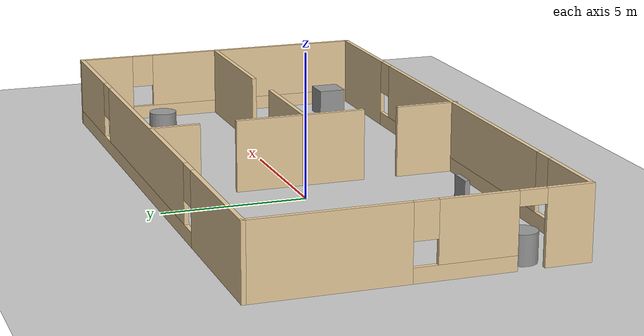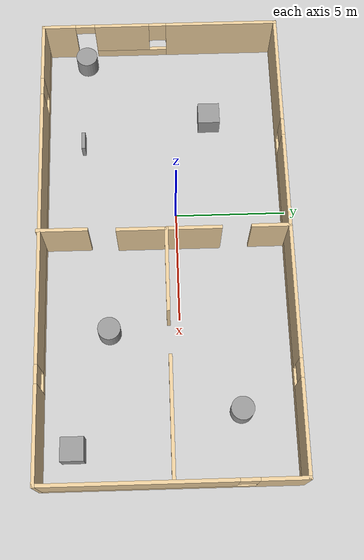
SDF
<sdf version="1.7">
 <world name="default">
  <light name="sun" type="directional">
   <pose>0 0 10 0 -0 0</pose>
   <diffuse>0.8 0.8 0.8 1</diffuse>
   <specular>0.2 0.2 0.2 1</specular>
   <attenuation>
    <range>1000</range>
    <constant>0.9</constant>
    <linear>0.01</linear>
    <quadratic>0.001</quadratic>
   </attenuation>
   <direction>-0.5 0.1 -0.9</direction>
   <spot><inner_angle>0</inner_angle><outer_angle>0</outer_angle><falloff>0</falloff></spot>
  </light>
  <model name="ground_plane">
   <static>1</static>
   <link name="link">
    <collision name="collision">
     <geometry><plane><normal>0 0 1</normal><size>100 100</size></plane></geometry>
     <surface><friction><ode><mu>100</mu><mu2>50</mu2></ode></friction></surface>
    </collision>
    <visual name="visual">
     <cast_shadows>0</cast_shadows>
     <geometry><plane><normal>0 0 1</normal><size>100 100</size></plane></geometry>
     <material>
      <script><uri>file://media/materials/scripts/gazebo.material</uri><name>Gazebo/Grey</name></script>
     </material>
    </visual>
   </link>
  </model>
  <gravity>0 0 -9.8</gravity>
  <magnetic_field>6e-06 2.3e-05 -4.2e-05</magnetic_field>
  <atmosphere type="adiabatic"/>
  <physics type="ode">
   <max_step_size>0.001</max_step_size>
   <real_time_factor>1</real_time_factor>
   <real_time_update_rate>1000</real_time_update_rate>
  </physics>
  <scene><ambient>0.4 0.4 0.4 1</ambient><background>0.7 0.7 0.7 1</background><shadows>1</shadows></scene>
  <audio><device>default</device></audio>
  <spherical_coordinates>
   <surface_model>EARTH_WGS84</surface_model>
   <latitude_deg>0</latitude_deg>
   <longitude_deg>0</longitude_deg>
   <elevation>0</elevation>
   <heading_deg>0</heading_deg>
  </spherical_coordinates>
  <model name="base-building">
   <pose>1.71804 -0.568303 0 0 -0 0</pose>
   <link name="Wall_0">
    <pose>-10.425 0.034868 0 0 -0 -1.5708</pose>
    <visual name="Wall_0_Visual_0">
     <pose>-2.90241 0 1.25 0 -0 0</pose>
     <geometry><box><size>5.19517 0.15 2.5</size></box></geometry>
     <material>
      <script><uri>file://media/materials/scripts/gazebo.material</uri><name>Gazebo/Grey</name></script>
      <ambient>0.921569 0.807843 0.615686 1</ambient>
     </material>
     <meta><layer>0</layer></meta>
    </visual>
    <collision name="Wall_0_Collision_0">
     <geometry><box><size>5.19517 0.15 2.5</size></box></geometry>
     <pose>-2.90241 0 1.25 0 -0 0</pose>
    </collision>
    <visual name="Wall_0_Visual_1">
     <pose>4.71817 0 1.25 0 -0 0</pose>
     <geometry><box><size>1.56366 0.15 2.5</size></box></geometry>
     <material>
      <script><uri>file://media/materials/scripts/gazebo.material</uri><name>Gazebo/Grey</name></script>
      <ambient>0.921569 0.807843 0.615686 1</ambient>
     </material>
     <meta><layer>0</layer></meta>
    </visual>
    <collision name="Wall_0_Collision_1">
     <geometry><box><size>1.56366 0.15 2.5</size></box></geometry>
     <pose>4.71817 0 1.25 0 -0 0</pose>
    </collision>
    <visual name="Wall_0_Visual_2">
     <pose>1.36576 0 0.25 0 -0 0</pose>
     <geometry><box><size>3.34117 0.15 0.5</size></box></geometry>
     <material>
      <script><uri>file://media/materials/scripts/gazebo.material</uri><name>Gazebo/Grey</name></script>
      <ambient>0.921569 0.807843 0.615686 1</ambient>
     </material>
     <meta><layer>0</layer></meta>
    </visual>
    <collision name="Wall_0_Collision_2">
     <geometry><box><size>3.34117 0.15 0.5</size></box></geometry>
     <pose>1.36576 0 0.25 0 -0 0</pose>
    </collision>
    <visual name="Wall_0_Visual_3">
     <pose>1.76576 0 1.5 0 -0 0</pose>
     <geometry><box><size>2.54117 0.15 2</size></box></geometry>
     <material>
      <script><uri>file://media/materials/scripts/gazebo.material</uri><name>Gazebo/Grey</name></script>
      <ambient>0.921569 0.807843 0.615686 1</ambient>
     </material>
     <meta><layer>0</layer></meta>
    </visual>
    <collision name="Wall_0_Collision_3">
     <geometry><box><size>2.54117 0.15 2</size></box></geometry>
     <pose>1.76576 0 1.5 0 -0 0</pose>
    </collision>
    <visual name="Wall_0_Visual_4">
     <pose>0.095172 0 1.9 0 -0 0</pose>
     <geometry><box><size>0.8 0.15 1.2</size></box></geometry>
     <material>
      <script><uri>file://media/materials/scripts/gazebo.material</uri><name>Gazebo/Grey</name></script>
      <ambient>0.921569 0.807843 0.615686 1</ambient>
     </material>
     <meta><layer>0</layer></meta>
    </visual>
    <collision name="Wall_0_Collision_4">
     <geometry><box><size>0.8 0.15 1.2</size></box></geometry>
     <pose>0.095172 0 1.9 0 -0 0</pose>
    </collision>
    <visual name="Wall_0_Visual_5">
     <pose>3.48634 0 2.25 0 -0 0</pose>
     <geometry><box><size>0.9 0.15 0.5</size></box></geometry>
     <material>
      <script><uri>file://media/materials/scripts/gazebo.material</uri><name>Gazebo/Grey</name></script>
      <ambient>0.921569 0.807843 0.615686 1</ambient>
     </material>
     <meta><layer>0</layer></meta>
    </visual>
    <collision name="Wall_0_Collision_5">
     <geometry><box><size>0.9 0.15 0.5</size></box></geometry>
     <pose>3.48634 0 2.25 0 -0 0</pose>
    </collision>
   </link>
   <link name="Wall_14">
    <collision name="Wall_14_Collision">
     <geometry><box><size>2.5 0.15 2.5</size></box></geometry>
     <pose>0 0 1.25 0 -0 0</pose>
    </collision>
    <visual name="Wall_14_Visual">
     <pose>0 0 1.25 0 -0 0</pose>
     <geometry><box><size>2.5 0.15 2.5</size></box></geometry>
     <material>
      <script><uri>file://media/materials/scripts/gazebo.material</uri><name>Gazebo/Grey</name></script>
      <ambient>0.921569 0.807843 0.615686 1</ambient>
     </material>
     <meta><layer>0</layer></meta>
    </visual>
    <pose>-0.162029 1.26797 0 0 -0 1.5708</pose>
   </link>
   <link name="Wall_2">
    <pose>-0 5.45987 0 0 -0 0</pose>
    <visual name="Wall_2_Visual_0">
     <pose>-7.90354 0 1.25 0 -0 0</pose>
     <geometry><box><size>5.19291 0.15 2.5</size></box></geometry>
     <material>
      <script><uri>file://media/materials/scripts/gazebo.material</uri><name>Gazebo/Grey</name></script>
      <ambient>0.921569 0.807843 0.615686 1</ambient>
     </material>
     <meta><layer>0</layer></meta>
    </visual>
    <collision name="Wall_2_Collision_0">
     <geometry><box><size>5.19291 0.15 2.5</size></box></geometry>
     <pose>-7.90354 0 1.25 0 -0 0</pose>
    </collision>
    <visual name="Wall_2_Visual_1">
     <pose>2.59646 0 0.25 0 -0 0</pose>
     <geometry><box><size>15.8071 0.15 0.5</size></box></geometry>
     <material>
      <script><uri>file://media/materials/scripts/gazebo.material</uri><name>Gazebo/Grey</name></script>
      <ambient>0.921569 0.807843 0.615686 1</ambient>
     </material>
     <meta><layer>0</layer></meta>
    </visual>
    <collision name="Wall_2_Collision_1">
     <geometry><box><size>15.8071 0.15 0.5</size></box></geometry>
     <pose>2.59646 0 0.25 0 -0 0</pose>
    </collision>
    <visual name="Wall_2_Visual_2">
     <pose>0.582734 0 1.5 0 -0 0</pose>
     <geometry><box><size>10.1796 0.15 2</size></box></geometry>
     <material>
      <script><uri>file://media/materials/scripts/gazebo.material</uri><name>Gazebo/Grey</name></script>
      <ambient>0.921569 0.807843 0.615686 1</ambient>
     </material>
     <meta><layer>0</layer></meta>
    </visual>
    <collision name="Wall_2_Collision_2">
     <geometry><box><size>10.1796 0.15 2</size></box></geometry>
     <pose>0.582734 0 1.5 0 -0 0</pose>
    </collision>
    <visual name="Wall_2_Visual_3">
     <pose>8.48628 0 1.5 0 -0 0</pose>
     <geometry><box><size>4.02744 0.15 2</size></box></geometry>
     <material>
      <script><uri>file://media/materials/scripts/gazebo.material</uri><name>Gazebo/Grey</name></script>
      <ambient>0.921569 0.807843 0.615686 1</ambient>
     </material>
     <meta><layer>0</layer></meta>
    </visual>
    <collision name="Wall_2_Collision_3">
     <geometry><box><size>4.02744 0.15 2</size></box></geometry>
     <pose>8.48628 0 1.5 0 -0 0</pose>
    </collision>
    <visual name="Wall_2_Visual_4">
     <pose>-4.90709 0 1.9 0 -0 0</pose>
     <geometry><box><size>0.8 0.15 1.2</size></box></geometry>
     <material>
      <script><uri>file://media/materials/scripts/gazebo.material</uri><name>Gazebo/Grey</name></script>
      <ambient>0.921569 0.807843 0.615686 1</ambient>
     </material>
     <meta><layer>0</layer></meta>
    </visual>
    <collision name="Wall_2_Collision_4">
     <geometry><box><size>0.8 0.15 1.2</size></box></geometry>
     <pose>-4.90709 0 1.9 0 -0 0</pose>
    </collision>
    <visual name="Wall_2_Visual_5">
     <pose>6.07256 0 1.9 0 -0 0</pose>
     <geometry><box><size>0.8 0.15 1.2</size></box></geometry>
     <material>
      <script><uri>file://media/materials/scripts/gazebo.material</uri><name>Gazebo/Grey</name></script>
      <ambient>0.921569 0.807843 0.615686 1</ambient>
     </material>
     <meta><layer>0</layer></meta>
    </visual>
    <collision name="Wall_2_Collision_5">
     <geometry><box><size>0.8 0.15 1.2</size></box></geometry>
     <pose>6.07256 0 1.9 0 -0 0</pose>
    </collision>
   </link>
   <link name="Wall_21">
    <collision name="Wall_21_Collision">
     <geometry><box><size>1.75 0.15 2.5</size></box></geometry>
     <pose>0 0 1.25 0 -0 0</pose>
    </collision>
    <visual name="Wall_21_Visual">
     <pose>0 0 1.25 0 -0 0</pose>
     <geometry><box><size>1.75 0.15 2.5</size></box></geometry>
     <material>
      <script><uri>file://media/materials/scripts/gazebo.material</uri><name>Gazebo/Grey</name></script>
      <ambient>0.921569 0.807843 0.615686 1</ambient>
     </material>
     <meta><layer>0</layer></meta>
    </visual>
    <pose>-0.184877 4.65523 0 0 -0 1.5708</pose>
   </link>
   <link name="Wall_23">
    <collision name="Wall_23_Collision">
     <geometry><box><size>2.25 0.15 2.5</size></box></geometry>
     <pose>0 0 1.25 0 -0 0</pose>
    </collision>
    <visual name="Wall_23_Visual">
     <pose>0 0 1.25 0 -0 0</pose>
     <geometry><box><size>2.25 0.15 2.5</size></box></geometry>
     <material>
      <script><uri>file://media/materials/scripts/gazebo.material</uri><name>Gazebo/Grey</name></script>
      <ambient>0.921569 0.807843 0.615686 1</ambient>
     </material>
     <meta><layer>0</layer></meta>
    </visual>
    <pose>-0.162029 -0.957035 0 0 -0 -1.5708</pose>
   </link>
   <link name="Wall_25">
    <collision name="Wall_25_Collision">
     <geometry><box><size>2.25 0.15 2.5</size></box></geometry>
     <pose>0 0 1.25 0 -0 0</pose>
    </collision>
    <visual name="Wall_25_Visual">
     <pose>0 0 1.25 0 -0 0</pose>
     <geometry><box><size>2.25 0.15 2.5</size></box></geometry>
     <material>
      <script><uri>file://media/materials/scripts/gazebo.material</uri><name>Gazebo/Grey</name></script>
      <ambient>0.921569 0.807843 0.615686 1</ambient>
     </material>
     <meta><layer>0</layer></meta>
    </visual>
    <pose>-0.208689 -4.40987 0 0 -0 -1.5708</pose>
   </link>
   <link name="Wall_27">
    <collision name="Wall_27_Collision">
     <geometry><box><size>3.75 0.15 2.5</size></box></geometry>
     <pose>0 0 1.25 0 -0 0</pose>
    </collision>
    <visual name="Wall_27_Visual">
     <pose>0 0 1.25 0 -0 0</pose>
     <geometry><box><size>3.75 0.15 2.5</size></box></geometry>
     <material>
      <script><uri>file://media/materials/scripts/gazebo.material</uri><name>Gazebo/Grey</name></script>
      <ambient>0.921569 0.807843 0.615686 1</ambient>
     </material>
     <meta><layer>0</layer></meta>
    </visual>
    <pose>1.63797 0.092965 0 0 -0 0</pose>
   </link>
   <link name="Wall_29">
    <collision name="Wall_29_Collision">
     <geometry><box><size>5 0.15 2.5</size></box></geometry>
     <pose>0 0 1.25 0 -0 0</pose>
    </collision>
    <visual name="Wall_29_Visual">
     <pose>0 0 1.25 0 -0 0</pose>
     <geometry><box><size>5 0.15 2.5</size></box></geometry>
     <material>
      <script><uri>file://media/materials/scripts/gazebo.material</uri><name>Gazebo/Grey</name></script>
      <ambient>0.921569 0.807843 0.615686 1</ambient>
     </material>
     <meta><layer>0</layer></meta>
    </visual>
    <pose>7.85555 0.124758 0 0 -0 0</pose>
   </link>
   <link name="Wall_4">
    <pose>10.425 0.034868 0 0 -0 -1.5708</pose>
    <visual name="Wall_4_Visual_0">
     <pose>-4.48677 0 1.25 0 -0 0</pose>
     <geometry><box><size>2.02647 0.15 2.5</size></box></geometry>
     <material>
      <script><uri>file://media/materials/scripts/gazebo.material</uri><name>Gazebo/Grey</name></script>
      <ambient>0.921569 0.807843 0.615686 1</ambient>
     </material>
     <meta><layer>0</layer></meta>
    </visual>
    <collision name="Wall_4_Collision_0">
     <geometry><box><size>2.02647 0.15 2.5</size></box></geometry>
     <pose>-4.48677 0 1.25 0 -0 0</pose>
    </collision>
    <visual name="Wall_4_Visual_1">
     <pose>1.01324 0 0.25 0 -0 0</pose>
     <geometry><box><size>8.97353 0.15 0.5</size></box></geometry>
     <material>
      <script><uri>file://media/materials/scripts/gazebo.material</uri><name>Gazebo/Grey</name></script>
      <ambient>0.921569 0.807843 0.615686 1</ambient>
     </material>
     <meta><layer>0</layer></meta>
    </visual>
    <collision name="Wall_4_Collision_1">
     <geometry><box><size>8.97353 0.15 0.5</size></box></geometry>
     <pose>1.01324 0 0.25 0 -0 0</pose>
    </collision>
    <visual name="Wall_4_Visual_2">
     <pose>1.41324 0 1.5 0 -0 0</pose>
     <geometry><box><size>8.17353 0.15 2</size></box></geometry>
     <material>
      <script><uri>file://media/materials/scripts/gazebo.material</uri><name>Gazebo/Grey</name></script>
      <ambient>0.921569 0.807843 0.615686 1</ambient>
     </material>
     <meta><layer>0</layer></meta>
    </visual>
    <collision name="Wall_4_Collision_2">
     <geometry><box><size>8.17353 0.15 2</size></box></geometry>
     <pose>1.41324 0 1.5 0 -0 0</pose>
    </collision>
    <visual name="Wall_4_Visual_3">
     <pose>-3.07353 0 1.9 0 -0 0</pose>
     <geometry><box><size>0.8 0.15 1.2</size></box></geometry>
     <material>
      <script><uri>file://media/materials/scripts/gazebo.material</uri><name>Gazebo/Grey</name></script>
      <ambient>0.921569 0.807843 0.615686 1</ambient>
     </material>
     <meta><layer>0</layer></meta>
    </visual>
    <collision name="Wall_4_Collision_3">
     <geometry><box><size>0.8 0.15 1.2</size></box></geometry>
     <pose>-3.07353 0 1.9 0 -0 0</pose>
    </collision>
   </link>
   <link name="Wall_5">
    <pose>-0 -5.39013 0 0 -0 3.14159</pose>
    <visual name="Wall_5_Visual_0">
     <pose>-8.46302 0 1.25 0 -0 0</pose>
     <geometry><box><size>4.07397 0.15 2.5</size></box></geometry>
     <material>
      <script><uri>file://media/materials/scripts/gazebo.material</uri><name>Gazebo/Grey</name></script>
      <ambient>0.921569 0.807843 0.615686 1</ambient>
     </material>
     <meta><layer>0</layer></meta>
    </visual>
    <collision name="Wall_5_Collision_0">
     <geometry><box><size>4.07397 0.15 2.5</size></box></geometry>
     <pose>-8.46302 0 1.25 0 -0 0</pose>
    </collision>
    <visual name="Wall_5_Visual_1">
     <pose>2.03698 0 0.25 0 -0 0</pose>
     <geometry><box><size>16.926 0.15 0.5</size></box></geometry>
     <material>
      <script><uri>file://media/materials/scripts/gazebo.material</uri><name>Gazebo/Grey</name></script>
      <ambient>0.921569 0.807843 0.615686 1</ambient>
     </material>
     <meta><layer>0</layer></meta>
    </visual>
    <collision name="Wall_5_Collision_1">
     <geometry><box><size>16.926 0.15 0.5</size></box></geometry>
     <pose>2.03698 0 0.25 0 -0 0</pose>
    </collision>
    <visual name="Wall_5_Visual_2">
     <pose>0.636393 0 1.5 0 -0 0</pose>
     <geometry><box><size>12.5249 0.15 2</size></box></geometry>
     <material>
      <script><uri>file://media/materials/scripts/gazebo.material</uri><name>Gazebo/Grey</name></script>
      <ambient>0.921569 0.807843 0.615686 1</ambient>
     </material>
     <meta><layer>0</layer></meta>
    </visual>
    <collision name="Wall_5_Collision_2">
     <geometry><box><size>12.5249 0.15 2</size></box></geometry>
     <pose>0.636393 0 1.5 0 -0 0</pose>
    </collision>
    <visual name="Wall_5_Visual_3">
     <pose>9.09941 0 1.5 0 -0 0</pose>
     <geometry><box><size>2.80118 0.15 2</size></box></geometry>
     <material>
      <script><uri>file://media/materials/scripts/gazebo.material</uri><name>Gazebo/Grey</name></script>
      <ambient>0.921569 0.807843 0.615686 1</ambient>
     </material>
     <meta><layer>0</layer></meta>
    </visual>
    <collision name="Wall_5_Collision_3">
     <geometry><box><size>2.80118 0.15 2</size></box></geometry>
     <pose>9.09941 0 1.5 0 -0 0</pose>
    </collision>
    <visual name="Wall_5_Visual_4">
     <pose>-6.02603 0 1.9 0 -0 0</pose>
     <geometry><box><size>0.8 0.15 1.2</size></box></geometry>
     <material>
      <script><uri>file://media/materials/scripts/gazebo.material</uri><name>Gazebo/Grey</name></script>
      <ambient>0.921569 0.807843 0.615686 1</ambient>
     </material>
     <meta><layer>0</layer></meta>
    </visual>
    <collision name="Wall_5_Collision_4">
     <geometry><box><size>0.8 0.15 1.2</size></box></geometry>
     <pose>-6.02603 0 1.9 0 -0 0</pose>
    </collision>
    <visual name="Wall_5_Visual_5">
     <pose>7.29882 0 1.9 0 -0 0</pose>
     <geometry><box><size>0.8 0.15 1.2</size></box></geometry>
     <material>
      <script><uri>file://media/materials/scripts/gazebo.material</uri><name>Gazebo/Grey</name></script>
      <ambient>0.921569 0.807843 0.615686 1</ambient>
     </material>
     <meta><layer>0</layer></meta>
    </visual>
    <collision name="Wall_5_Collision_5">
     <geometry><box><size>0.8 0.15 1.2</size></box></geometry>
     <pose>7.29882 0 1.9 0 -0 0</pose>
    </collision>
   </link>
   <link name="Window_3">
    <collision name="Window_3_Collision">
     <geometry><box><size>0.8 0.17 0.8</size></box></geometry>
     <pose>0 0 0.4 0 -0 0</pose>
    </collision>
    <visual name="Window_3_Visual">
     <pose>0 0 0.4 0 -0 0</pose>
     <geometry><box><size>0.8 0.17 0.8</size></box></geometry>
     <material>
      <script><uri>file://media/materials/scripts/gazebo.material</uri><name>Gazebo/Grey</name></script>
     </material>
    </visual>
    <pose>-5.08217 -3.60843 0.5 0 -0 0</pose>
   </link>
   <static>1</static>
  </model>
  <model name="models">
   <link name="link_3">
    <inertial>
     <mass>1</mass>
     <inertia>
      <ixx>0.166667</ixx>
      <ixy>0</ixy>
      <ixz>0</ixz>
      <iyy>0.166667</iyy>
      <iyz>0</iyz>
      <izz>0.166667</izz>
     </inertia>
    </inertial>
    <pose>-7.25963 3.18065 0 0 -0 0</pose>
    <visual name="visual">
     <geometry><box><size>1 1 1</size></box></geometry>
     <material>
      <lighting>1</lighting>
      <script><uri>file://media/materials/scripts/gazebo.material</uri><name>Gazebo/Grey</name></script>
      <shader type="pixel"/>
     </material>
    </visual>
    <collision name="collision">
     <geometry><box><size>1 1 1</size></box></geometry>
     <surface>
      <friction>
       <ode><mu>1</mu><mu2>1</mu2><fdir1>0 0 0</fdir1><slip1>0</slip1><slip2>0</slip2></ode>
       <torsional>
        <coefficient>1</coefficient>
        <patch_radius>0</patch_radius>
        <surface_radius>0</surface_radius>
        <use_patch_radius>1</use_patch_radius>
        <ode><slip>0</slip></ode>
       </torsional>
      </friction>
      <bounce><restitution_coefficient>0</restitution_coefficient><threshold>1e+06</threshold></bounce>
      <contact>
       <collide_without_contact>0</collide_without_contact>
       <collide_without_contact_bitmask>1</collide_without_contact_bitmask>
       <collide_bitmask>1</collide_bitmask>
       <ode>
        <soft_cfm>0</soft_cfm>
        <soft_erp>0.2</soft_erp>
        <kp>1e+13</kp>
        <kd>1</kd>
        <max_vel>0.01</max_vel>
        <min_depth>0</min_depth>
       </ode>
       <bullet>
        <split_impulse>1</split_impulse>
        <split_impulse_penetration_threshold>-0.01</split_impulse_penetration_threshold>
        <soft_cfm>0</soft_cfm>
        <soft_erp>0.2</soft_erp>
        <kp>1e+13</kp>
        <kd>1</kd>
       </bullet>
      </contact>
     </surface>
    </collision>
   </link>
   <link name="link_4">
    <inertial>
     <mass>1</mass>
     <inertia><ixx>0.145833</ixx><ixy>0</ixy><ixz>0</ixz><iyy>0.145833</iyy><iyz>0</iyz><izz>0.125</izz></inertia>
    </inertial>
    <pose>3.04149 -1.55356 0 0 -0 0</pose>
    <visual name="visual">
     <geometry><cylinder><radius>0.5</radius><length>1</length></cylinder></geometry>
     <material>
      <lighting>1</lighting>
      <script><uri>file://media/materials/scripts/gazebo.material</uri><name>Gazebo/Grey</name></script>
      <shader type="pixel"/>
     </material>
    </visual>
    <collision name="collision">
     <geometry><cylinder><radius>0.5</radius><length>1</length></cylinder></geometry>
     <surface>
      <friction>
       <ode><mu>1</mu><mu2>1</mu2><fdir1>0 0 0</fdir1><slip1>0</slip1><slip2>0</slip2></ode>
       <torsional>
        <coefficient>1</coefficient>
        <patch_radius>0</patch_radius>
        <surface_radius>0</surface_radius>
        <use_patch_radius>1</use_patch_radius>
        <ode><slip>0</slip></ode>
       </torsional>
      </friction>
      <bounce><restitution_coefficient>0</restitution_coefficient><threshold>1e+06</threshold></bounce>
      <contact>
       <collide_without_contact>0</collide_without_contact>
       <collide_without_contact_bitmask>1</collide_without_contact_bitmask>
       <collide_bitmask>1</collide_bitmask>
       <ode>
        <soft_cfm>0</soft_cfm>
        <soft_erp>0.2</soft_erp>
        <kp>1e+13</kp>
        <kd>1</kd>
        <max_vel>0.01</max_vel>
        <min_depth>0</min_depth>
       </ode>
       <bullet>
        <split_impulse>1</split_impulse>
        <split_impulse_penetration_threshold>-0.01</split_impulse_penetration_threshold>
        <soft_cfm>0</soft_cfm>
        <soft_erp>0.2</soft_erp>
        <kp>1e+13</kp>
        <kd>1</kd>
       </bullet>
      </contact>
     </surface>
    </collision>
   </link>
   <link name="link_5">
    <inertial>
     <mass>1</mass>
     <inertia><ixx>0.145833</ixx><ixy>0</ixy><ixz>0</ixz><iyy>0.145833</iyy><iyz>0</iyz><izz>0.125</izz></inertia>
    </inertial>
    <pose>6.6189 4.03543 0 0 -0 0</pose>
    <visual name="visual">
     <geometry><cylinder><radius>0.5</radius><length>1</length></cylinder></geometry>
     <material>
      <lighting>1</lighting>
      <script><uri>file://media/materials/scripts/gazebo.material</uri><name>Gazebo/Grey</name></script>
      <shader type="pixel"/>
     </material>
    </visual>
    <collision name="collision">
     <geometry><cylinder><radius>0.5</radius><length>1</length></cylinder></geometry>
     <surface>
      <friction>
       <ode><mu>1</mu><mu2>1</mu2><fdir1>0 0 0</fdir1><slip1>0</slip1><slip2>0</slip2></ode>
       <torsional>
        <coefficient>1</coefficient>
        <patch_radius>0</patch_radius>
        <surface_radius>0</surface_radius>
        <use_patch_radius>1</use_patch_radius>
        <ode><slip>0</slip></ode>
       </torsional>
      </friction>
      <bounce><restitution_coefficient>0</restitution_coefficient><threshold>1e+06</threshold></bounce>
      <contact>
       <collide_without_contact>0</collide_without_contact>
       <collide_without_contact_bitmask>1</collide_without_contact_bitmask>
       <collide_bitmask>1</collide_bitmask>
       <ode>
        <soft_cfm>0</soft_cfm>
        <soft_erp>0.2</soft_erp>
        <kp>1e+13</kp>
        <kd>1</kd>
        <max_vel>0.01</max_vel>
        <min_depth>0</min_depth>
       </ode>
       <bullet>
        <split_impulse>1</split_impulse>
        <split_impulse_penetration_threshold>-0.01</split_impulse_penetration_threshold>
        <soft_cfm>0</soft_cfm>
        <soft_erp>0.2</soft_erp>
        <kp>1e+13</kp>
        <kd>1</kd>
       </bullet>
      </contact>
     </surface>
    </collision>
   </link>
   <link name="link_6">
    <inertial>
     <mass>1</mass>
     <inertia>
      <ixx>0.166667</ixx>
      <ixy>0</ixy>
      <ixz>0</ixz>
      <iyy>0.166667</iyy>
      <iyz>0</iyz>
      <izz>0.166667</izz>
     </inertia>
    </inertial>
    <pose>8.09435 -3.10436 0 0 -0 0</pose>
    <visual name="visual">
     <geometry><box><size>1 1 1</size></box></geometry>
     <material>
      <lighting>1</lighting>
      <script><uri>file://media/materials/scripts/gazebo.material</uri><name>Gazebo/Grey</name></script>
      <shader type="pixel"/>
     </material>
    </visual>
    <collision name="collision">
     <geometry><box><size>1 1 1</size></box></geometry>
     <surface>
      <friction>
       <ode><mu>1</mu><mu2>1</mu2><fdir1>0 0 0</fdir1><slip1>0</slip1><slip2>0</slip2></ode>
       <torsional>
        <coefficient>1</coefficient>
        <patch_radius>0</patch_radius>
        <surface_radius>0</surface_radius>
        <use_patch_radius>1</use_patch_radius>
        <ode><slip>0</slip></ode>
       </torsional>
      </friction>
      <bounce><restitution_coefficient>0</restitution_coefficient><threshold>1e+06</threshold></bounce>
      <contact>
       <collide_without_contact>0</collide_without_contact>
       <collide_without_contact_bitmask>1</collide_without_contact_bitmask>
       <collide_bitmask>1</collide_bitmask>
       <ode>
        <soft_cfm>0</soft_cfm>
        <soft_erp>0.2</soft_erp>
        <kp>1e+13</kp>
        <kd>1</kd>
        <max_vel>0.01</max_vel>
        <min_depth>0</min_depth>
       </ode>
       <bullet>
        <split_impulse>1</split_impulse>
        <split_impulse_penetration_threshold>-0.01</split_impulse_penetration_threshold>
        <soft_cfm>0</soft_cfm>
        <soft_erp>0.2</soft_erp>
        <kp>1e+13</kp>
        <kd>1</kd>
       </bullet>
      </contact>
     </surface>
    </collision>
   </link>
   <link name="link_8">
    <inertial>
     <mass>1</mass>
     <inertia><ixx>0.145833</ixx><ixy>0</ixy><ixz>0</ixz><iyy>0.145833</iyy><iyz>0</iyz><izz>0.125</izz></inertia>
    </inertial>
    <pose>-10.4952 -2.55818 0 0 -0 0</pose>
    <visual name="visual">
     <geometry><cylinder><radius>0.5</radius><length>1</length></cylinder></geometry>
     <material>
      <lighting>1</lighting>
      <script><uri>file://media/materials/scripts/gazebo.material</uri><name>Gazebo/Grey</name></script>
      <shader type="pixel"/>
     </material>
    </visual>
    <collision name="collision">
     <geometry><cylinder><radius>0.5</radius><length>1</length></cylinder></geometry>
     <surface>
      <friction>
       <ode><mu>1</mu><mu2>1</mu2><fdir1>0 0 0</fdir1><slip1>0</slip1><slip2>0</slip2></ode>
       <torsional>
        <coefficient>1</coefficient>
        <patch_radius>0</patch_radius>
        <surface_radius>0</surface_radius>
        <use_patch_radius>1</use_patch_radius>
        <ode><slip>0</slip></ode>
       </torsional>
      </friction>
      <bounce><restitution_coefficient>0</restitution_coefficient><threshold>1e+06</threshold></bounce>
      <contact>
       <collide_without_contact>0</collide_without_contact>
       <collide_without_contact_bitmask>1</collide_without_contact_bitmask>
       <collide_bitmask>1</collide_bitmask>
       <ode>
        <soft_cfm>0</soft_cfm>
        <soft_erp>0.2</soft_erp>
        <kp>1e+13</kp>
        <kd>1</kd>
        <max_vel>0.01</max_vel>
        <min_depth>0</min_depth>
       </ode>
       <bullet>
        <split_impulse>1</split_impulse>
        <split_impulse_penetration_threshold>-0.01</split_impulse_penetration_threshold>
        <soft_cfm>0</soft_cfm>
        <soft_erp>0.2</soft_erp>
        <kp>1e+13</kp>
        <kd>1</kd>
       </bullet>
      </contact>
     </surface>
    </collision>
   </link>
   <static>0</static>
   <pose>2.48771 -1.50414 0.5 0 -0 0</pose>
  </model>
 </world>
</sdf>
